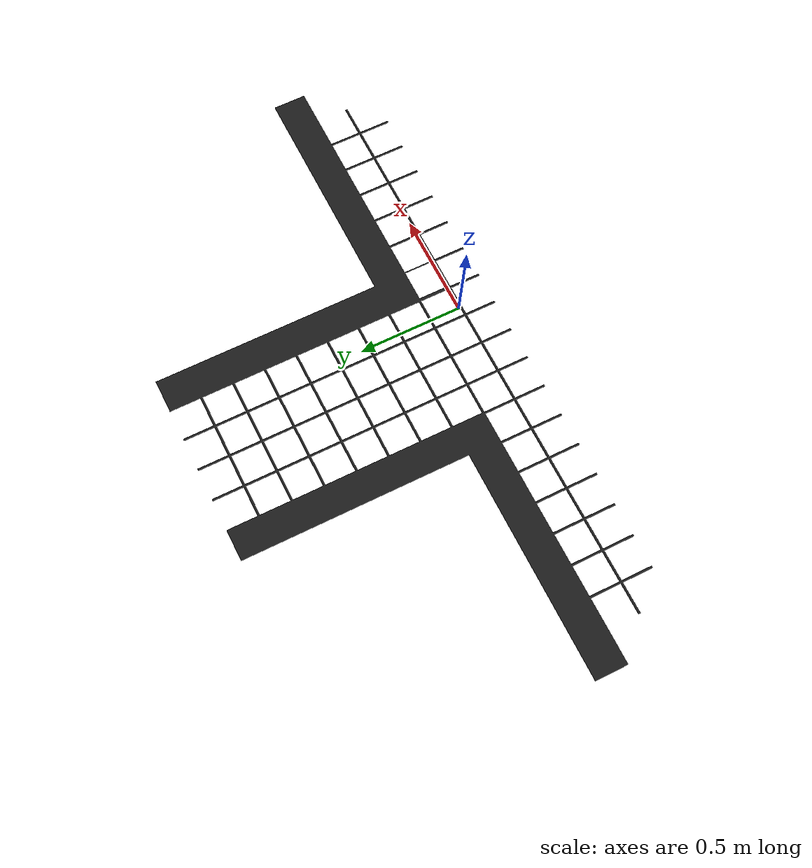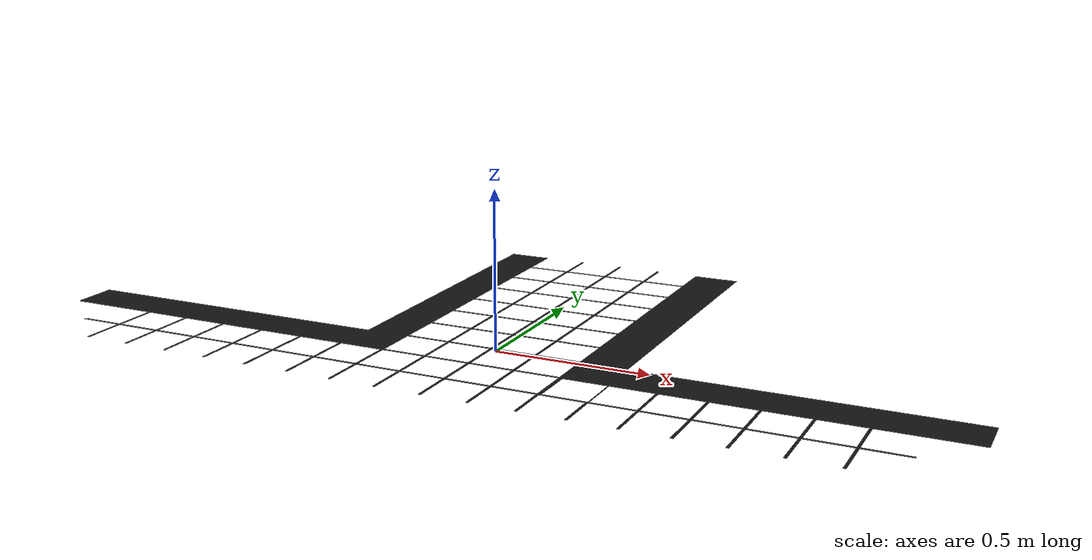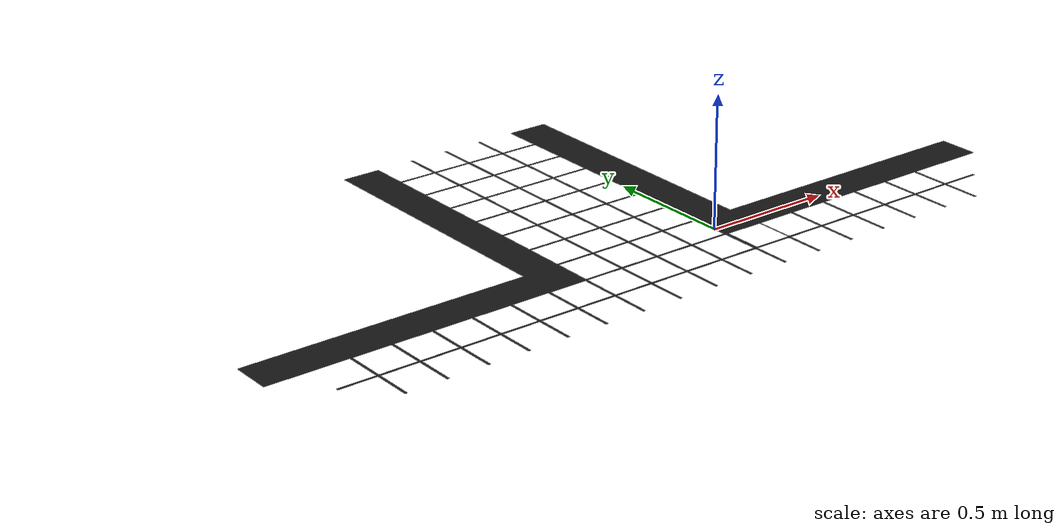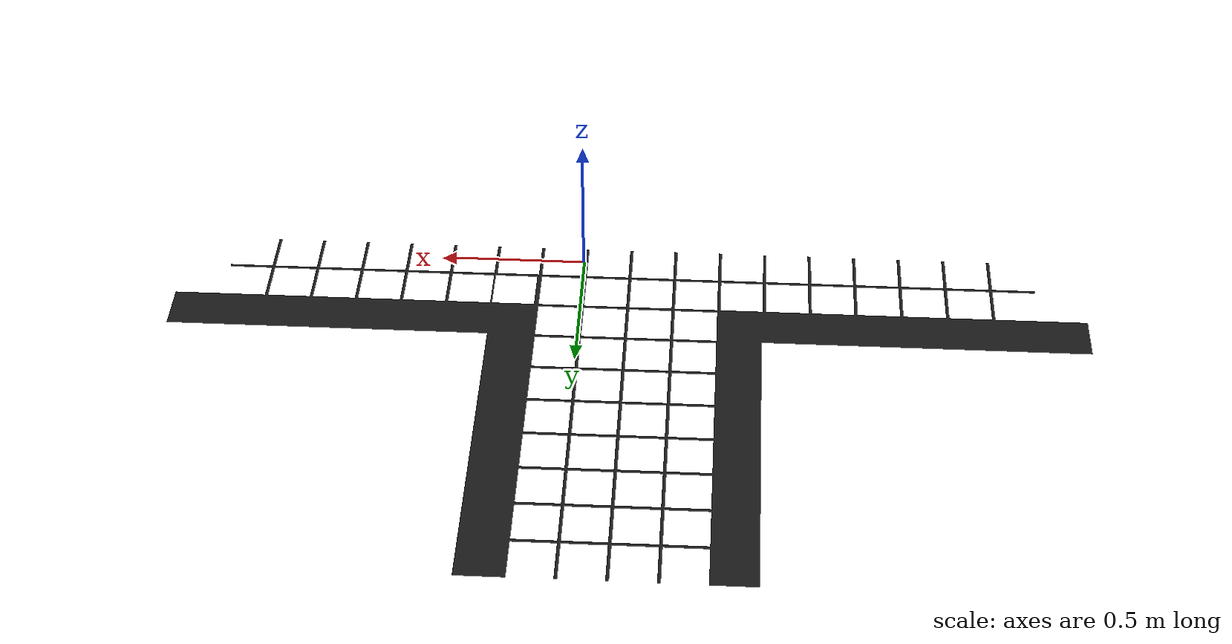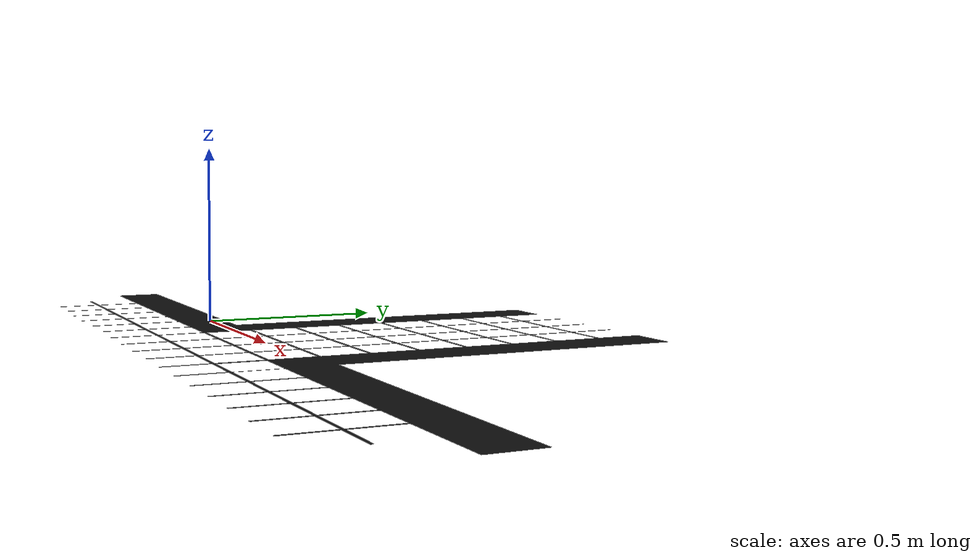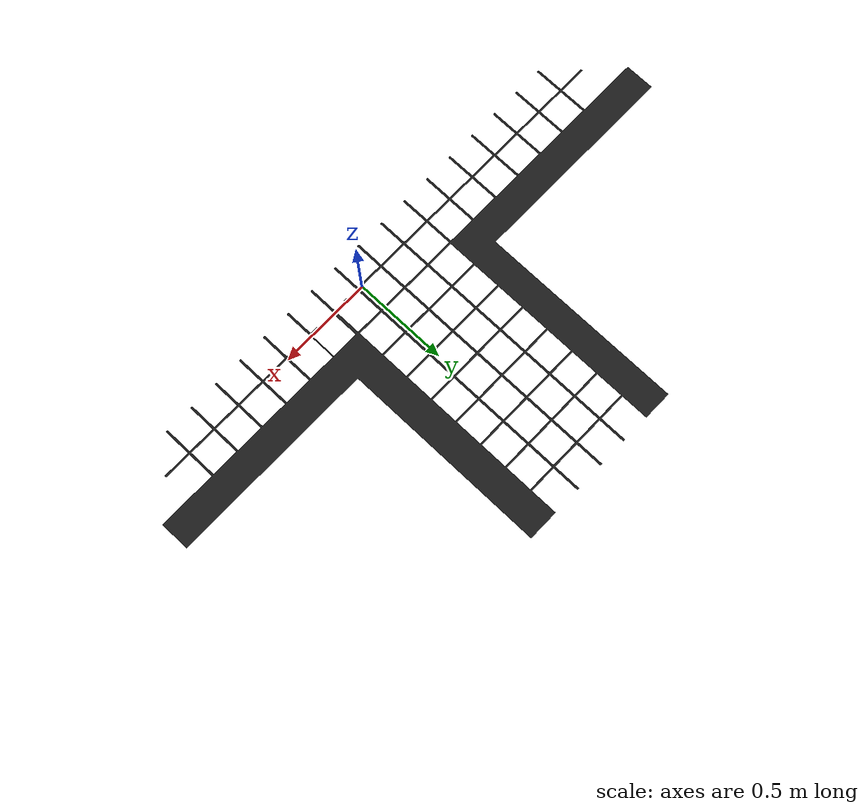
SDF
<?xml version='1.0'?>
<sdf version='1.6'>
  <model name='grid'>
    <link name='arena::link_1'>
      <pose frame=''>0 0 0 0 -0 0</pose>
      <self_collide>0</self_collide>
      <enable_wind>0</enable_wind>
      <kinematic>0</kinematic>
      <gravity>1</gravity>
      <inertial>
        <mass>1</mass>
        <pose frame=''>0 0 0 0 -0 0</pose>
        <inertia>
          <ixx>1</ixx>
          <ixy>0</ixy>
          <ixz>0</ixz>
          <iyy>1</iyy>
          <iyz>0</iyz>
          <izz>1</izz>
        </inertia>
      </inertial>
      <visual name='visual'>
        <pose frame=''>0 0 0 0 0 0</pose>
        <geometry>
          <mesh>
            <uri>model://grid/meshes/grid.dae</uri>
            <scale>1 1 1</scale>
          </mesh>
        </geometry>
        <transparency>0</transparency>
        <cast_shadows>1</cast_shadows>
        <material>
        </material>
      </visual>
    </link>
    <static>1</static>
    <allow_auto_disable>1</allow_auto_disable>
  </model>
</sdf>
